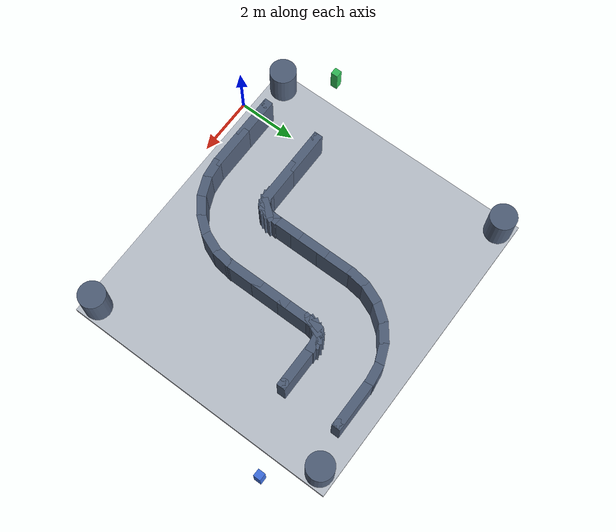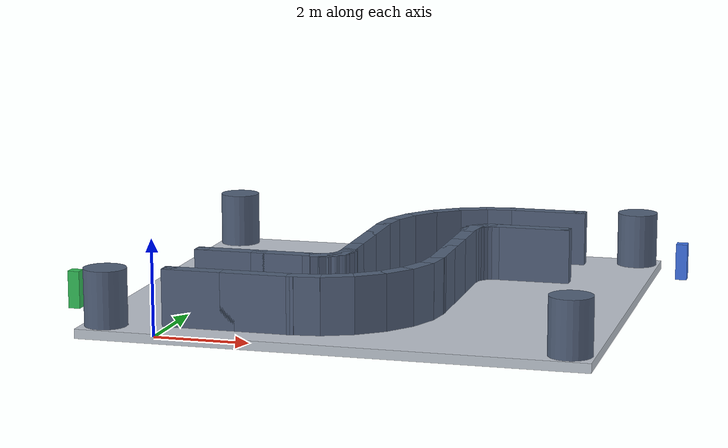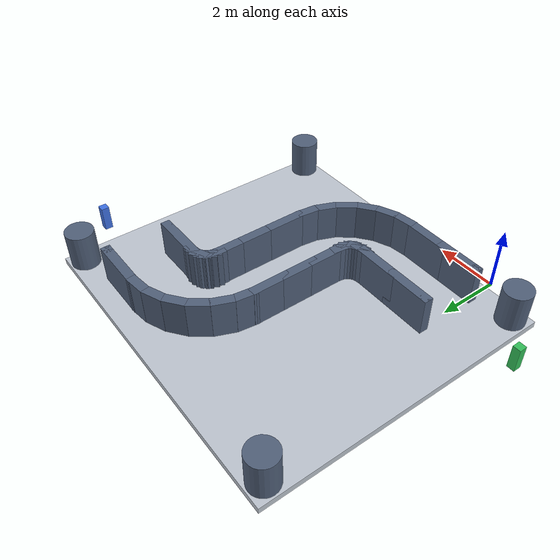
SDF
<?xml version="1.0"?>
<sdf version="1.6">
  <world name="l_maze">
    <light type="directional" name="sun">
      <pose>0 0 10 0 0 0</pose>
      <diffuse>0.8 0.8 0.8 1</diffuse>
      <specular>0.2 0.2 0.2 1</specular>
      <direction>-0.5 0.5 -1</direction>
    </light>
    <scene>
      <ambient>0.3 0.3 0.3 1</ambient>
      <background>0.7 0.7 0.7 1</background>
      <shadows>true</shadows>
    </scene>
    <model name="ground_plane">
      <static>true</static>
      <pose>3.500 5.000 -0.1 0 0 0</pose>
      <link name="link">
        <collision name="collision">
          <geometry><box><size>10.60 9.60 0.2</size></box></geometry>
          <surface>
            <friction><ode><mu>1</mu><mu2>1</mu2></ode></friction>
          </surface>
        </collision>
        <visual name="visual">
          <geometry><box><size>10.60 9.60 0.2</size></box></geometry>
          <material>
            <ambient>0.75 0.78 0.82 1</ambient>
            <diffuse>0.75 0.78 0.82 1</diffuse>
          </material>
        </visual>
      </link>
    </model>
    <!-- ============ 迷宫墙体（深蓝灰；box 墙段 + 圆柱圆头） ============ -->
    <model name="wall_00">
      <static>true</static>
      <pose>0.625 3.000 0.600 0 0 0.0000</pose>
      <link name="link">
        <collision name="collision">
          <geometry><box><size>1.550 0.300 1.2</size></box></geometry>
        </collision>
        <visual name="visual">
          <geometry><box><size>1.550 0.300 1.2</size></box></geometry>
          <material><ambient>0.32 0.38 0.48 1</ambient><diffuse>0.32 0.38 0.48 1</diffuse></material>
        </visual>
      </link>
    </model>
    <model name="wall_01">
      <static>true</static>
      <pose>0.625 1.000 0.600 0 0 0.0000</pose>
      <link name="link">
        <collision name="collision">
          <geometry><box><size>1.550 0.300 1.2</size></box></geometry>
        </collision>
        <visual name="visual">
          <geometry><box><size>1.550 0.300 1.2</size></box></geometry>
          <material><ambient>0.32 0.38 0.48 1</ambient><diffuse>0.32 0.38 0.48 1</diffuse></material>
        </visual>
      </link>
    </model>
    <model name="wall_02">
      <static>true</static>
      <pose>1.875 3.000 0.600 0 0 0.0000</pose>
      <link name="link">
        <collision name="collision">
          <geometry><box><size>1.550 0.300 1.2</size></box></geometry>
        </collision>
        <visual name="visual">
          <geometry><box><size>1.550 0.300 1.2</size></box></geometry>
          <material><ambient>0.32 0.38 0.48 1</ambient><diffuse>0.32 0.38 0.48 1</diffuse></material>
        </visual>
      </link>
    </model>
    <model name="wall_03">
      <static>true</static>
      <pose>1.875 1.000 0.600 0 0 0.0000</pose>
      <link name="link">
        <collision name="collision">
          <geometry><box><size>1.550 0.300 1.2</size></box></geometry>
        </collision>
        <visual name="visual">
          <geometry><box><size>1.550 0.300 1.2</size></box></geometry>
          <material><ambient>0.32 0.38 0.48 1</ambient><diffuse>0.32 0.38 0.48 1</diffuse></material>
        </visual>
      </link>
    </model>
    <model name="wall_04">
      <static>true</static>
      <pose>2.564 3.017 0.600 0 0 0.1309</pose>
      <link name="link">
        <collision name="collision">
          <geometry><box><size>0.692 0.300 1.2</size></box></geometry>
        </collision>
        <visual name="visual">
          <geometry><box><size>0.692 0.300 1.2</size></box></geometry>
          <material><ambient>0.32 0.38 0.48 1</ambient><diffuse>0.32 0.38 0.48 1</diffuse></material>
        </visual>
      </link>
    </model>
    <model name="wall_05">
      <static>true</static>
      <pose>2.825 1.034 0.600 0 0 0.1309</pose>
      <link name="link">
        <collision name="collision">
          <geometry><box><size>0.692 0.300 1.2</size></box></geometry>
        </collision>
        <visual name="visual">
          <geometry><box><size>0.692 0.300 1.2</size></box></geometry>
          <material><ambient>0.32 0.38 0.48 1</ambient><diffuse>0.32 0.38 0.48 1</diffuse></material>
        </visual>
      </link>
    </model>
    <model name="wall_06">
      <static>true</static>
      <pose>2.686 3.050 0.600 0 0 0.3927</pose>
      <link name="link">
        <collision name="collision">
          <geometry><box><size>0.692 0.300 1.2</size></box></geometry>
        </collision>
        <visual name="visual">
          <geometry><box><size>0.692 0.300 1.2</size></box></geometry>
          <material><ambient>0.32 0.38 0.48 1</ambient><diffuse>0.32 0.38 0.48 1</diffuse></material>
        </visual>
      </link>
    </model>
    <model name="wall_07">
      <static>true</static>
      <pose>3.452 1.202 0.600 0 0 0.3927</pose>
      <link name="link">
        <collision name="collision">
          <geometry><box><size>0.692 0.300 1.2</size></box></geometry>
        </collision>
        <visual name="visual">
          <geometry><box><size>0.692 0.300 1.2</size></box></geometry>
          <material><ambient>0.32 0.38 0.48 1</ambient><diffuse>0.32 0.38 0.48 1</diffuse></material>
        </visual>
      </link>
    </model>
    <model name="wall_08">
      <static>true</static>
      <pose>2.797 3.114 0.600 0 0 0.6545</pose>
      <link name="link">
        <collision name="collision">
          <geometry><box><size>0.692 0.300 1.2</size></box></geometry>
        </collision>
        <visual name="visual">
          <geometry><box><size>0.692 0.300 1.2</size></box></geometry>
          <material><ambient>0.32 0.38 0.48 1</ambient><diffuse>0.32 0.38 0.48 1</diffuse></material>
        </visual>
      </link>
    </model>
    <model name="wall_09">
      <static>true</static>
      <pose>4.014 1.527 0.600 0 0 0.6545</pose>
      <link name="link">
        <collision name="collision">
          <geometry><box><size>0.692 0.300 1.2</size></box></geometry>
        </collision>
        <visual name="visual">
          <geometry><box><size>0.692 0.300 1.2</size></box></geometry>
          <material><ambient>0.32 0.38 0.48 1</ambient><diffuse>0.32 0.38 0.48 1</diffuse></material>
        </visual>
      </link>
    </model>
    <model name="wall_10">
      <static>true</static>
      <pose>2.886 3.203 0.600 0 0 0.9163</pose>
      <link name="link">
        <collision name="collision">
          <geometry><box><size>0.692 0.300 1.2</size></box></geometry>
        </collision>
        <visual name="visual">
          <geometry><box><size>0.692 0.300 1.2</size></box></geometry>
          <material><ambient>0.32 0.38 0.48 1</ambient><diffuse>0.32 0.38 0.48 1</diffuse></material>
        </visual>
      </link>
    </model>
    <model name="wall_11">
      <static>true</static>
      <pose>4.473 1.986 0.600 0 0 0.9163</pose>
      <link name="link">
        <collision name="collision">
          <geometry><box><size>0.692 0.300 1.2</size></box></geometry>
        </collision>
        <visual name="visual">
          <geometry><box><size>0.692 0.300 1.2</size></box></geometry>
          <material><ambient>0.32 0.38 0.48 1</ambient><diffuse>0.32 0.38 0.48 1</diffuse></material>
        </visual>
      </link>
    </model>
    <model name="wall_12">
      <static>true</static>
      <pose>2.950 3.314 0.600 0 0 1.1781</pose>
      <link name="link">
        <collision name="collision">
          <geometry><box><size>0.692 0.300 1.2</size></box></geometry>
        </collision>
        <visual name="visual">
          <geometry><box><size>0.692 0.300 1.2</size></box></geometry>
          <material><ambient>0.32 0.38 0.48 1</ambient><diffuse>0.32 0.38 0.48 1</diffuse></material>
        </visual>
      </link>
    </model>
    <model name="wall_13">
      <static>true</static>
      <pose>4.798 2.548 0.600 0 0 1.1781</pose>
      <link name="link">
        <collision name="collision">
          <geometry><box><size>0.692 0.300 1.2</size></box></geometry>
        </collision>
        <visual name="visual">
          <geometry><box><size>0.692 0.300 1.2</size></box></geometry>
          <material><ambient>0.32 0.38 0.48 1</ambient><diffuse>0.32 0.38 0.48 1</diffuse></material>
        </visual>
      </link>
    </model>
    <model name="wall_14">
      <static>true</static>
      <pose>2.983 3.436 0.600 0 0 1.4399</pose>
      <link name="link">
        <collision name="collision">
          <geometry><box><size>0.692 0.300 1.2</size></box></geometry>
        </collision>
        <visual name="visual">
          <geometry><box><size>0.692 0.300 1.2</size></box></geometry>
          <material><ambient>0.32 0.38 0.48 1</ambient><diffuse>0.32 0.38 0.48 1</diffuse></material>
        </visual>
      </link>
    </model>
    <model name="wall_15">
      <static>true</static>
      <pose>4.966 3.175 0.600 0 0 1.4399</pose>
      <link name="link">
        <collision name="collision">
          <geometry><box><size>0.692 0.300 1.2</size></box></geometry>
        </collision>
        <visual name="visual">
          <geometry><box><size>0.692 0.300 1.2</size></box></geometry>
          <material><ambient>0.32 0.38 0.48 1</ambient><diffuse>0.32 0.38 0.48 1</diffuse></material>
        </visual>
      </link>
    </model>
    <model name="wall_16">
      <static>true</static>
      <pose>3.000 4.000 0.600 0 0 1.5708</pose>
      <link name="link">
        <collision name="collision">
          <geometry><box><size>1.300 0.300 1.2</size></box></geometry>
        </collision>
        <visual name="visual">
          <geometry><box><size>1.300 0.300 1.2</size></box></geometry>
          <material><ambient>0.32 0.38 0.48 1</ambient><diffuse>0.32 0.38 0.48 1</diffuse></material>
        </visual>
      </link>
    </model>
    <model name="wall_17">
      <static>true</static>
      <pose>5.000 4.000 0.600 0 0 1.5708</pose>
      <link name="link">
        <collision name="collision">
          <geometry><box><size>1.300 0.300 1.2</size></box></geometry>
        </collision>
        <visual name="visual">
          <geometry><box><size>1.300 0.300 1.2</size></box></geometry>
          <material><ambient>0.32 0.38 0.48 1</ambient><diffuse>0.32 0.38 0.48 1</diffuse></material>
        </visual>
      </link>
    </model>
    <model name="wall_18">
      <static>true</static>
      <pose>3.000 5.000 0.600 0 0 1.5708</pose>
      <link name="link">
        <collision name="collision">
          <geometry><box><size>1.300 0.300 1.2</size></box></geometry>
        </collision>
        <visual name="visual">
          <geometry><box><size>1.300 0.300 1.2</size></box></geometry>
          <material><ambient>0.32 0.38 0.48 1</ambient><diffuse>0.32 0.38 0.48 1</diffuse></material>
        </visual>
      </link>
    </model>
    <model name="wall_19">
      <static>true</static>
      <pose>5.000 5.000 0.600 0 0 1.5708</pose>
      <link name="link">
        <collision name="collision">
          <geometry><box><size>1.300 0.300 1.2</size></box></geometry>
        </collision>
        <visual name="visual">
          <geometry><box><size>1.300 0.300 1.2</size></box></geometry>
          <material><ambient>0.32 0.38 0.48 1</ambient><diffuse>0.32 0.38 0.48 1</diffuse></material>
        </visual>
      </link>
    </model>
    <model name="wall_20">
      <static>true</static>
      <pose>3.000 6.000 0.600 0 0 1.5708</pose>
      <link name="link">
        <collision name="collision">
          <geometry><box><size>1.300 0.300 1.2</size></box></geometry>
        </collision>
        <visual name="visual">
          <geometry><box><size>1.300 0.300 1.2</size></box></geometry>
          <material><ambient>0.32 0.38 0.48 1</ambient><diffuse>0.32 0.38 0.48 1</diffuse></material>
        </visual>
      </link>
    </model>
    <model name="wall_21">
      <static>true</static>
      <pose>5.000 6.000 0.600 0 0 1.5708</pose>
      <link name="link">
        <collision name="collision">
          <geometry><box><size>1.300 0.300 1.2</size></box></geometry>
        </collision>
        <visual name="visual">
          <geometry><box><size>1.300 0.300 1.2</size></box></geometry>
          <material><ambient>0.32 0.38 0.48 1</ambient><diffuse>0.32 0.38 0.48 1</diffuse></material>
        </visual>
      </link>
    </model>
    <model name="wall_22">
      <static>true</static>
      <pose>3.034 6.825 0.600 0 0 1.4399</pose>
      <link name="link">
        <collision name="collision">
          <geometry><box><size>0.692 0.300 1.2</size></box></geometry>
        </collision>
        <visual name="visual">
          <geometry><box><size>0.692 0.300 1.2</size></box></geometry>
          <material><ambient>0.32 0.38 0.48 1</ambient><diffuse>0.32 0.38 0.48 1</diffuse></material>
        </visual>
      </link>
    </model>
    <model name="wall_23">
      <static>true</static>
      <pose>5.017 6.564 0.600 0 0 1.4399</pose>
      <link name="link">
        <collision name="collision">
          <geometry><box><size>0.692 0.300 1.2</size></box></geometry>
        </collision>
        <visual name="visual">
          <geometry><box><size>0.692 0.300 1.2</size></box></geometry>
          <material><ambient>0.32 0.38 0.48 1</ambient><diffuse>0.32 0.38 0.48 1</diffuse></material>
        </visual>
      </link>
    </model>
    <model name="wall_24">
      <static>true</static>
      <pose>3.202 7.452 0.600 0 0 1.1781</pose>
      <link name="link">
        <collision name="collision">
          <geometry><box><size>0.692 0.300 1.2</size></box></geometry>
        </collision>
        <visual name="visual">
          <geometry><box><size>0.692 0.300 1.2</size></box></geometry>
          <material><ambient>0.32 0.38 0.48 1</ambient><diffuse>0.32 0.38 0.48 1</diffuse></material>
        </visual>
      </link>
    </model>
    <model name="wall_25">
      <static>true</static>
      <pose>5.050 6.686 0.600 0 0 1.1781</pose>
      <link name="link">
        <collision name="collision">
          <geometry><box><size>0.692 0.300 1.2</size></box></geometry>
        </collision>
        <visual name="visual">
          <geometry><box><size>0.692 0.300 1.2</size></box></geometry>
          <material><ambient>0.32 0.38 0.48 1</ambient><diffuse>0.32 0.38 0.48 1</diffuse></material>
        </visual>
      </link>
    </model>
    <model name="wall_26">
      <static>true</static>
      <pose>3.527 8.014 0.600 0 0 0.9163</pose>
      <link name="link">
        <collision name="collision">
          <geometry><box><size>0.692 0.300 1.2</size></box></geometry>
        </collision>
        <visual name="visual">
          <geometry><box><size>0.692 0.300 1.2</size></box></geometry>
          <material><ambient>0.32 0.38 0.48 1</ambient><diffuse>0.32 0.38 0.48 1</diffuse></material>
        </visual>
      </link>
    </model>
    <model name="wall_27">
      <static>true</static>
      <pose>5.114 6.797 0.600 0 0 0.9163</pose>
      <link name="link">
        <collision name="collision">
          <geometry><box><size>0.692 0.300 1.2</size></box></geometry>
        </collision>
        <visual name="visual">
          <geometry><box><size>0.692 0.300 1.2</size></box></geometry>
          <material><ambient>0.32 0.38 0.48 1</ambient><diffuse>0.32 0.38 0.48 1</diffuse></material>
        </visual>
      </link>
    </model>
    <model name="wall_28">
      <static>true</static>
      <pose>3.986 8.473 0.600 0 0 0.6545</pose>
      <link name="link">
        <collision name="collision">
          <geometry><box><size>0.692 0.300 1.2</size></box></geometry>
        </collision>
        <visual name="visual">
          <geometry><box><size>0.692 0.300 1.2</size></box></geometry>
          <material><ambient>0.32 0.38 0.48 1</ambient><diffuse>0.32 0.38 0.48 1</diffuse></material>
        </visual>
      </link>
    </model>
    <model name="wall_29">
      <static>true</static>
      <pose>5.203 6.886 0.600 0 0 0.6545</pose>
      <link name="link">
        <collision name="collision">
          <geometry><box><size>0.692 0.300 1.2</size></box></geometry>
        </collision>
        <visual name="visual">
          <geometry><box><size>0.692 0.300 1.2</size></box></geometry>
          <material><ambient>0.32 0.38 0.48 1</ambient><diffuse>0.32 0.38 0.48 1</diffuse></material>
        </visual>
      </link>
    </model>
    <model name="wall_30">
      <static>true</static>
      <pose>4.548 8.798 0.600 0 0 0.3927</pose>
      <link name="link">
        <collision name="collision">
          <geometry><box><size>0.692 0.300 1.2</size></box></geometry>
        </collision>
        <visual name="visual">
          <geometry><box><size>0.692 0.300 1.2</size></box></geometry>
          <material><ambient>0.32 0.38 0.48 1</ambient><diffuse>0.32 0.38 0.48 1</diffuse></material>
        </visual>
      </link>
    </model>
    <model name="wall_31">
      <static>true</static>
      <pose>5.314 6.950 0.600 0 0 0.3927</pose>
      <link name="link">
        <collision name="collision">
          <geometry><box><size>0.692 0.300 1.2</size></box></geometry>
        </collision>
        <visual name="visual">
          <geometry><box><size>0.692 0.300 1.2</size></box></geometry>
          <material><ambient>0.32 0.38 0.48 1</ambient><diffuse>0.32 0.38 0.48 1</diffuse></material>
        </visual>
      </link>
    </model>
    <model name="wall_32">
      <static>true</static>
      <pose>5.175 8.966 0.600 0 0 0.1309</pose>
      <link name="link">
        <collision name="collision">
          <geometry><box><size>0.692 0.300 1.2</size></box></geometry>
        </collision>
        <visual name="visual">
          <geometry><box><size>0.692 0.300 1.2</size></box></geometry>
          <material><ambient>0.32 0.38 0.48 1</ambient><diffuse>0.32 0.38 0.48 1</diffuse></material>
        </visual>
      </link>
    </model>
    <model name="wall_33">
      <static>true</static>
      <pose>5.436 6.983 0.600 0 0 0.1309</pose>
      <link name="link">
        <collision name="collision">
          <geometry><box><size>0.692 0.300 1.2</size></box></geometry>
        </collision>
        <visual name="visual">
          <geometry><box><size>0.692 0.300 1.2</size></box></geometry>
          <material><ambient>0.32 0.38 0.48 1</ambient><diffuse>0.32 0.38 0.48 1</diffuse></material>
        </visual>
      </link>
    </model>
    <model name="wall_34">
      <static>true</static>
      <pose>6.250 9.000 0.600 0 0 0.0000</pose>
      <link name="link">
        <collision name="collision">
          <geometry><box><size>1.800 0.300 1.2</size></box></geometry>
        </collision>
        <visual name="visual">
          <geometry><box><size>1.800 0.300 1.2</size></box></geometry>
          <material><ambient>0.32 0.38 0.48 1</ambient><diffuse>0.32 0.38 0.48 1</diffuse></material>
        </visual>
      </link>
    </model>
    <model name="wall_35">
      <static>true</static>
      <pose>6.250 7.000 0.600 0 0 0.0000</pose>
      <link name="link">
        <collision name="collision">
          <geometry><box><size>1.800 0.300 1.2</size></box></geometry>
        </collision>
        <visual name="visual">
          <geometry><box><size>1.800 0.300 1.2</size></box></geometry>
          <material><ambient>0.32 0.38 0.48 1</ambient><diffuse>0.32 0.38 0.48 1</diffuse></material>
        </visual>
      </link>
    </model>
    <model name="pillar_00">
      <static>true</static>
      <pose>0.000 3.000 0.600 0 0 0</pose>
      <link name="link">
        <collision name="collision">
          <geometry><cylinder><radius>0.150</radius><length>1.2</length></cylinder></geometry>
        </collision>
        <visual name="visual">
          <geometry><cylinder><radius>0.150</radius><length>1.2</length></cylinder></geometry>
          <material><ambient>0.32 0.38 0.48 1</ambient><diffuse>0.32 0.38 0.48 1</diffuse></material>
        </visual>
      </link>
    </model>
    <model name="pillar_01">
      <static>true</static>
      <pose>7.000 9.000 0.600 0 0 0</pose>
      <link name="link">
        <collision name="collision">
          <geometry><cylinder><radius>0.150</radius><length>1.2</length></cylinder></geometry>
        </collision>
        <visual name="visual">
          <geometry><cylinder><radius>0.150</radius><length>1.2</length></cylinder></geometry>
          <material><ambient>0.32 0.38 0.48 1</ambient><diffuse>0.32 0.38 0.48 1</diffuse></material>
        </visual>
      </link>
    </model>
    <model name="pillar_02">
      <static>true</static>
      <pose>0.000 1.000 0.600 0 0 0</pose>
      <link name="link">
        <collision name="collision">
          <geometry><cylinder><radius>0.150</radius><length>1.2</length></cylinder></geometry>
        </collision>
        <visual name="visual">
          <geometry><cylinder><radius>0.150</radius><length>1.2</length></cylinder></geometry>
          <material><ambient>0.32 0.38 0.48 1</ambient><diffuse>0.32 0.38 0.48 1</diffuse></material>
        </visual>
      </link>
    </model>
    <model name="pillar_03">
      <static>true</static>
      <pose>7.000 7.000 0.600 0 0 0</pose>
      <link name="link">
        <collision name="collision">
          <geometry><cylinder><radius>0.150</radius><length>1.2</length></cylinder></geometry>
        </collision>
        <visual name="visual">
          <geometry><cylinder><radius>0.150</radius><length>1.2</length></cylinder></geometry>
          <material><ambient>0.32 0.38 0.48 1</ambient><diffuse>0.32 0.38 0.48 1</diffuse></material>
        </visual>
      </link>
    </model>
    <model name="pillar_04">
      <static>true</static>
      <pose>-1.300 0.700 0.600 0 0 0</pose>
      <link name="link">
        <collision name="collision">
          <geometry><cylinder><radius>0.450</radius><length>1.2</length></cylinder></geometry>
        </collision>
        <visual name="visual">
          <geometry><cylinder><radius>0.450</radius><length>1.2</length></cylinder></geometry>
          <material><ambient>0.32 0.38 0.48 1</ambient><diffuse>0.32 0.38 0.48 1</diffuse></material>
        </visual>
      </link>
    </model>
    <model name="pillar_05">
      <static>true</static>
      <pose>-1.300 9.300 0.600 0 0 0</pose>
      <link name="link">
        <collision name="collision">
          <geometry><cylinder><radius>0.450</radius><length>1.2</length></cylinder></geometry>
        </collision>
        <visual name="visual">
          <geometry><cylinder><radius>0.450</radius><length>1.2</length></cylinder></geometry>
          <material><ambient>0.32 0.38 0.48 1</ambient><diffuse>0.32 0.38 0.48 1</diffuse></material>
        </visual>
      </link>
    </model>
    <model name="pillar_06">
      <static>true</static>
      <pose>8.300 0.700 0.600 0 0 0</pose>
      <link name="link">
        <collision name="collision">
          <geometry><cylinder><radius>0.450</radius><length>1.2</length></cylinder></geometry>
        </collision>
        <visual name="visual">
          <geometry><cylinder><radius>0.450</radius><length>1.2</length></cylinder></geometry>
          <material><ambient>0.32 0.38 0.48 1</ambient><diffuse>0.32 0.38 0.48 1</diffuse></material>
        </visual>
      </link>
    </model>
    <model name="pillar_07">
      <static>true</static>
      <pose>8.300 9.300 0.600 0 0 0</pose>
      <link name="link">
        <collision name="collision">
          <geometry><cylinder><radius>0.450</radius><length>1.2</length></cylinder></geometry>
        </collision>
        <visual name="visual">
          <geometry><cylinder><radius>0.450</radius><length>1.2</length></cylinder></geometry>
          <material><ambient>0.32 0.38 0.48 1</ambient><diffuse>0.32 0.38 0.48 1</diffuse></material>
        </visual>
      </link>
    </model>
    <!-- ============ 起终点标记柱 ============ -->
    <model name="marker_entry">
      <static>true</static>
      <pose>-2.500 2.000 0.4 0 0 0</pose>
      <link name="link">
        <collision name="collision">
          <geometry><box><size>0.25 0.25 0.8</size></box></geometry>
        </collision>
        <visual name="visual">
          <geometry><box><size>0.25 0.25 0.8</size></box></geometry>
          <material><ambient>0.2 0.75 0.35 1</ambient><diffuse>0.2 0.75 0.35 1</diffuse></material>
        </visual>
      </link>
    </model>
    <model name="marker_exit">
      <static>true</static>
      <pose>9.500 8.000 0.4 0 0 0</pose>
      <link name="link">
        <collision name="collision">
          <geometry><box><size>0.25 0.25 0.8</size></box></geometry>
        </collision>
        <visual name="visual">
          <geometry><box><size>0.25 0.25 0.8</size></box></geometry>
          <material><ambient>0.25 0.45 0.9 1</ambient><diffuse>0.25 0.45 0.9 1</diffuse></material>
        </visual>
      </link>
    </model>
  </world>
</sdf>
